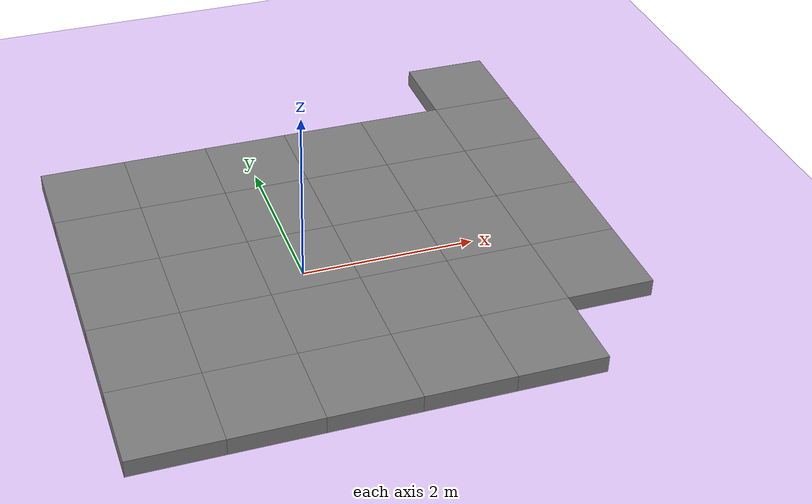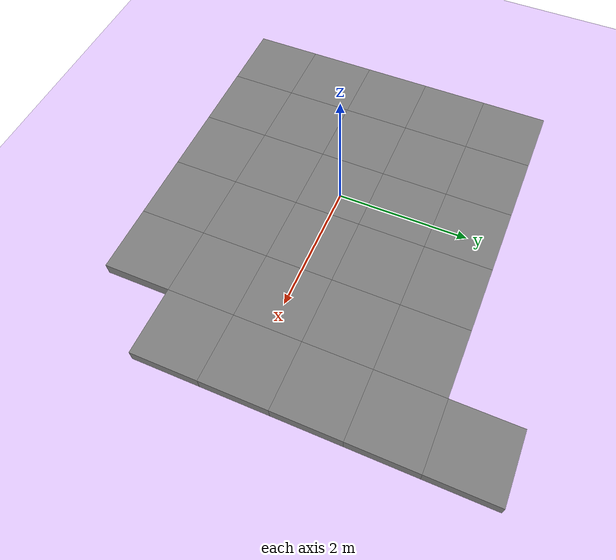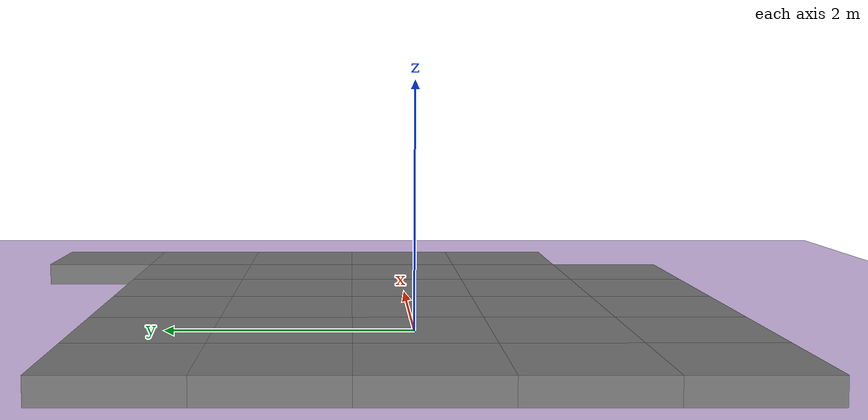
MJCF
<mujoco model="terrain_only">
    <compiler angle="radian"/>
    <option timestep="0.002" gravity="0 0 -9.81"/>

    <asset>
        <texture type="skybox" builtin="gradient" rgb1="0.3 0.5 0.7" rgb2="0 0 0" width="512" height="512"/>
        <texture name="texplane" type="2d" builtin="checker" rgb1=".2 .3 .4" rgb2=".1 0.15 0.2" width="512" height="512" mark="cross" markrgb=".8 .8 .8"/>
        <material name="matplane" reflectance="0.3" texture="texplane" texrepeat="1 1" texuniform="true"/>
    </asset>

    <default>
        <geom friction="1 0.005 0.0001"/>
    </default>

    <worldbody>
        <light directional="true" diffuse=".4 .4 .4" specular="0.1 0.1 0.1" pos="0 0 5.0" dir="0 0 -1" castshadow="false"/>
        <light directional="true" diffuse=".6 .6 .6" specular="0.2 0.2 0.2" pos="0 0 4" dir="0 0 -1"/>

        <geom name="floor" type="plane" size="50 50 0.1" rgba="0.9 0.8 1 1" material="matplane"/>

        <!-- The terrain boxes will be generated entirely through Python randomize_terrain -->
        <!-- Note: randomize_terrain searches for GEOM_BOXes that have a pos<50.
             So we need to insert dummy boxes here for it to mutate -->
        <geom name="dummy_box_1" type="box" size="0.5 0.5 0.1" pos="0 0 0.1" rgba="0.5 0.5 0.5 1"/>
        <geom name="dummy_box_2" type="box" size="0.5 0.5 0.1" pos="1 0 0.1" rgba="0.5 0.5 0.5 1"/>
        <geom name="dummy_box_3" type="box" size="0.5 0.5 0.1" pos="0 1 0.1" rgba="0.5 0.5 0.5 1"/>
        <geom name="dummy_box_4" type="box" size="0.5 0.5 0.1" pos="-1 0 0.1" rgba="0.5 0.5 0.5 1"/>
        <geom name="dummy_box_5" type="box" size="0.5 0.5 0.1" pos="0 -1 0.1" rgba="0.5 0.5 0.5 1"/>
        <geom name="dummy_box_6" type="box" size="0.5 0.5 0.1" pos="1 1 0.1" rgba="0.5 0.5 0.5 1"/>
        <geom name="dummy_box_7" type="box" size="0.5 0.5 0.1" pos="-1 -1 0.1" rgba="0.5 0.5 0.5 1"/>
        <geom name="dummy_box_8" type="box" size="0.5 0.5 0.1" pos="-1 1 0.1" rgba="0.5 0.5 0.5 1"/>
        <geom name="dummy_box_9" type="box" size="0.5 0.5 0.1" pos="1 -1 0.1" rgba="0.5 0.5 0.5 1"/>
        <geom name="dummy_box_10" type="box" size="0.5 0.5 0.1" pos="2 2 0.1" rgba="0.5 0.5 0.5 1"/>

        <!-- We will generate up to 50 boxes by copy-pasting -->
        <!-- Just inserting more boxes so randomize_terrain has enough to work with -->
        <geom name="dummy_box_11" type="box" size="0.5 0.5 0.1" pos="2 1 0.1" rgba="0.5 0.5 0.5 1"/>
        <geom name="dummy_box_12" type="box" size="0.5 0.5 0.1" pos="2 0 0.1" rgba="0.5 0.5 0.5 1"/>
        <geom name="dummy_box_13" type="box" size="0.5 0.5 0.1" pos="2 -1 0.1" rgba="0.5 0.5 0.5 1"/>
        <geom name="dummy_box_14" type="box" size="0.5 0.5 0.1" pos="2 -2 0.1" rgba="0.5 0.5 0.5 1"/>
        <geom name="dummy_box_15" type="box" size="0.5 0.5 0.1" pos="1 -2 0.1" rgba="0.5 0.5 0.5 1"/>
        <geom name="dummy_box_16" type="box" size="0.5 0.5 0.1" pos="0 -2 0.1" rgba="0.5 0.5 0.5 1"/>
        <geom name="dummy_box_17" type="box" size="0.5 0.5 0.1" pos="-1 -2 0.1" rgba="0.5 0.5 0.5 1"/>
        <geom name="dummy_box_18" type="box" size="0.5 0.5 0.1" pos="-2 -2 0.1" rgba="0.5 0.5 0.5 1"/>
        <geom name="dummy_box_19" type="box" size="0.5 0.5 0.1" pos="-2 -1 0.1" rgba="0.5 0.5 0.5 1"/>
        <geom name="dummy_box_20" type="box" size="0.5 0.5 0.1" pos="-2 0 0.1" rgba="0.5 0.5 0.5 1"/>
        <geom name="dummy_box_21" type="box" size="0.5 0.5 0.1" pos="-2 1 0.1" rgba="0.5 0.5 0.5 1"/>
        <geom name="dummy_box_22" type="box" size="0.5 0.5 0.1" pos="-2 2 0.1" rgba="0.5 0.5 0.5 1"/>
        <geom name="dummy_box_23" type="box" size="0.5 0.5 0.1" pos="-1 2 0.1" rgba="0.5 0.5 0.5 1"/>
        <geom name="dummy_box_24" type="box" size="0.5 0.5 0.1" pos="0 2 0.1" rgba="0.5 0.5 0.5 1"/>
        <geom name="dummy_box_25" type="box" size="0.5 0.5 0.1" pos="1 2 0.1" rgba="0.5 0.5 0.5 1"/>
        <geom name="dummy_box_26" type="box" size="0.5 0.5 0.1" pos="3 3 0.1" rgba="0.5 0.5 0.5 1"/>
        <geom name="dummy_box_27" type="box" size="0.5 0.5 0.1" pos="3 2 0.1" rgba="0.5 0.5 0.5 1"/>
        <geom name="dummy_box_28" type="box" size="0.5 0.5 0.1" pos="3 1 0.1" rgba="0.5 0.5 0.5 1"/>
        <geom name="dummy_box_29" type="box" size="0.5 0.5 0.1" pos="3 0 0.1" rgba="0.5 0.5 0.5 1"/>
        <geom name="dummy_box_30" type="box" size="0.5 0.5 0.1" pos="3 -1 0.1" rgba="0.5 0.5 0.5 1"/>
    </worldbody>
</mujoco>
